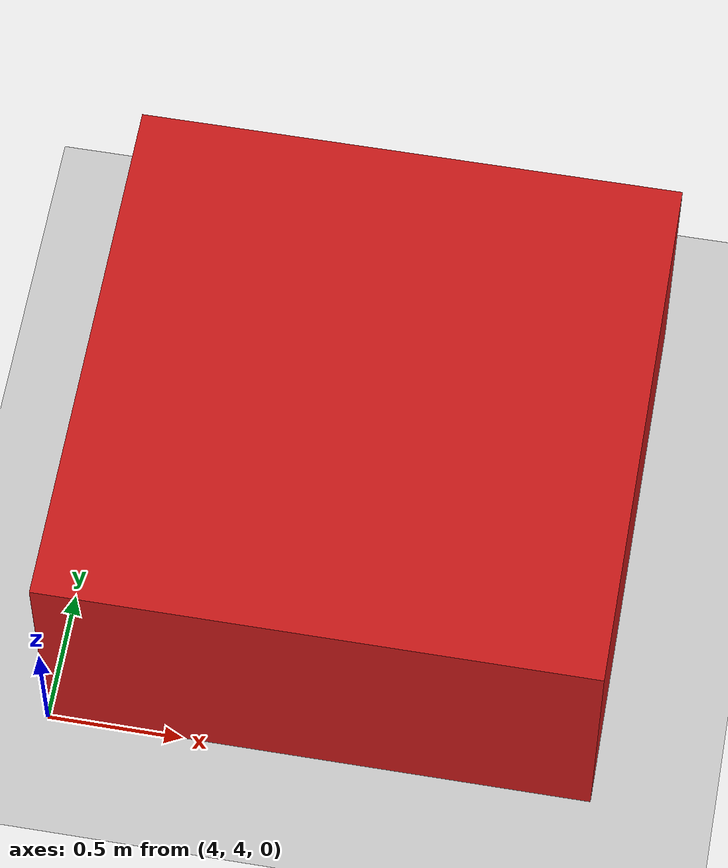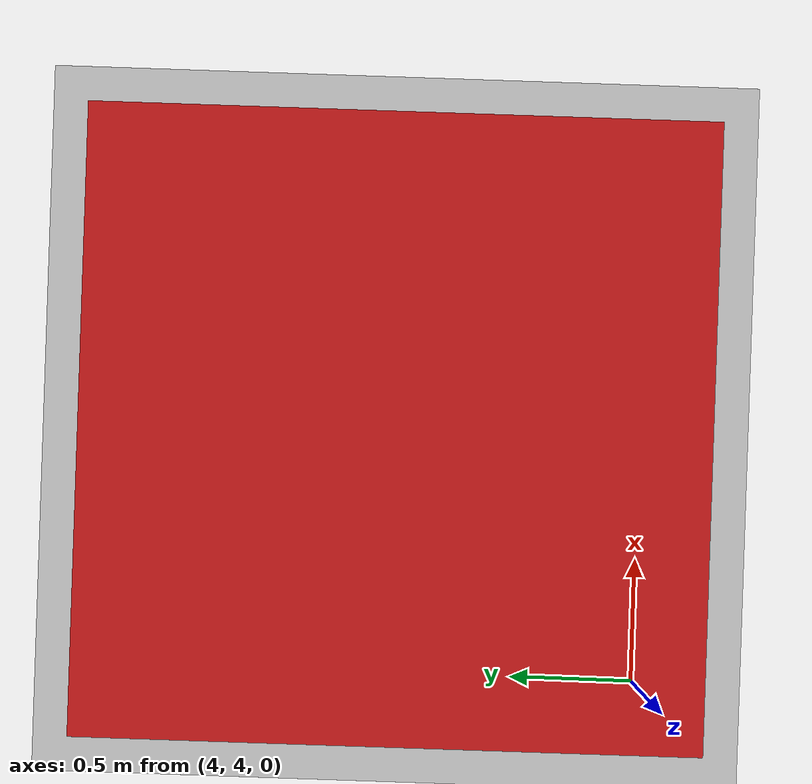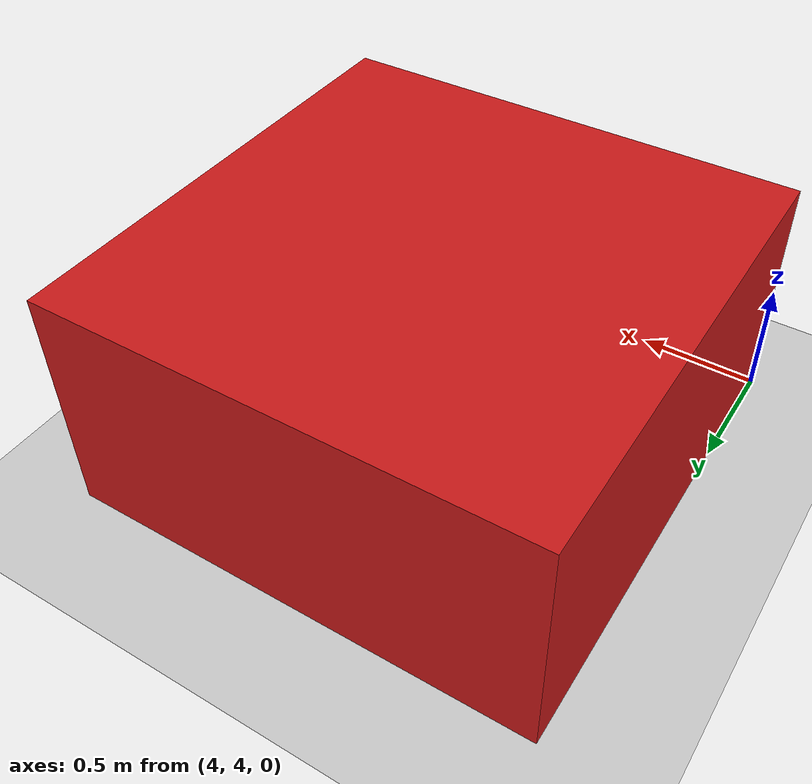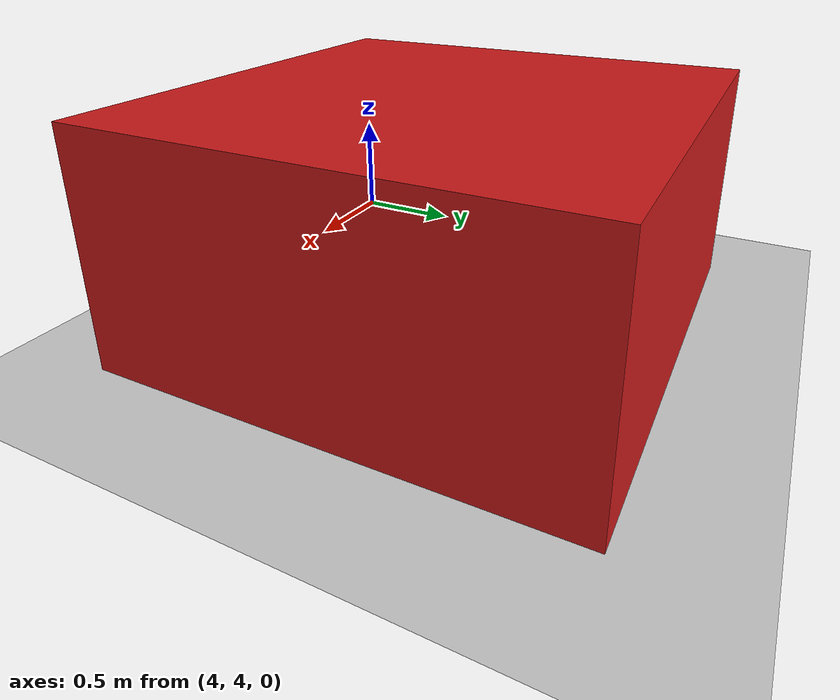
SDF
<?xml version="1.0" ?>
<sdf version="1.6">
  <world name="default">
    <include>
      <uri>model://sun</uri>
    </include>

    <include>
      <uri>model://ground_plane</uri>
    </include>

    <model name="test_obstacle">
      <pose>5.0 5.0 0.5 0 0 0</pose>
      <link name="link">
        <collision name="collision">
          <geometry>
            <box>
              <size>2.0 2.0 1.0</size> </box>
          </geometry>
        </collision>
        <visual name="visual">
          <geometry>
            <box>
              <size>2.0 2.0 1.0</size>
            </box>
          </geometry>
          <material>
            <ambient>0.8 0.1 0.1 1</ambient> <diffuse>0.8 0.1 0.1 1</diffuse>
          </material>
        </visual>
      </link>
    </model>
  </world>
</sdf>
